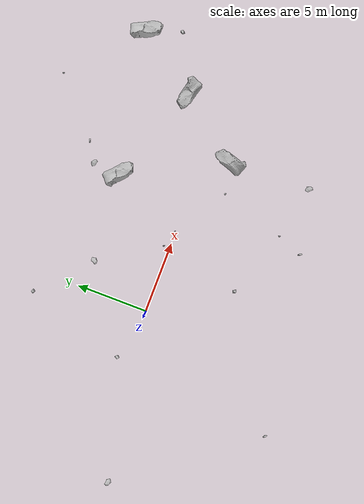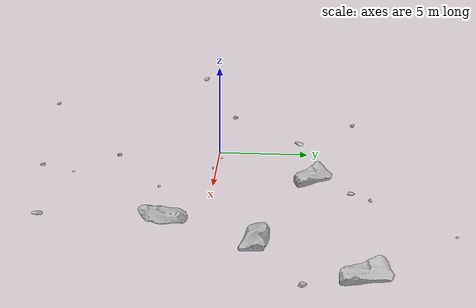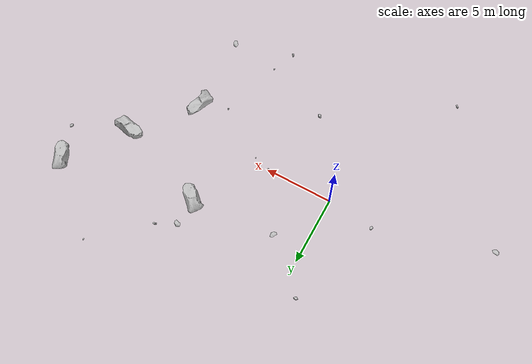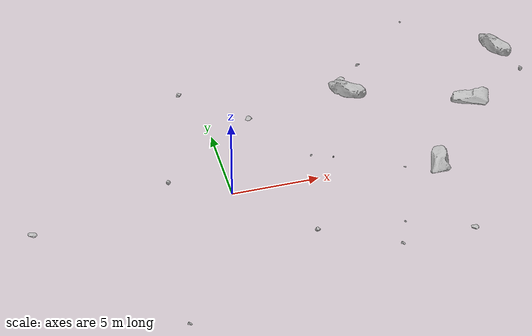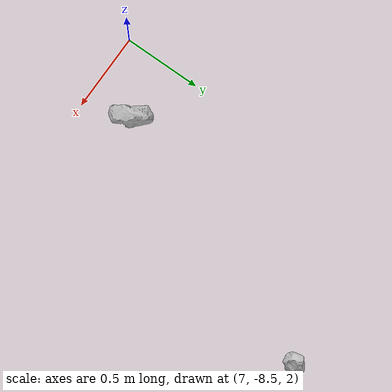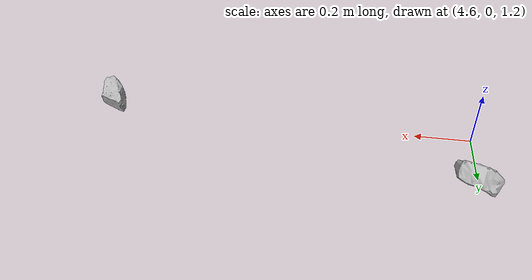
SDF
<sdf version="1.7">
 <world name="marsyard">
  <gravity>0 0 -9.81</gravity>
  <physics name="dart_physics" type="ignored">
   <max_step_size>0.003</max_step_size>
   <real_time_update_rate>333</real_time_update_rate>
   <real_time_factor>1.0</real_time_factor>
  </physics>
  <plugin filename="ignition-gazebo-physics-system" name="ignition::gazebo::systems::Physics"/>
  <plugin filename="ignition-gazebo-user-commands-system" name="ignition::gazebo::systems::UserCommands"/>
  <plugin filename="ignition-gazebo-scene-broadcaster-system" name="ignition::gazebo::systems::SceneBroadcaster"/>
  <plugin filename="ignition-gazebo-contact-system" name="ignition::gazebo::systems::Contact"/>
  <scene>
   <ambient>0.95 0.95 0.95 1</ambient>
   <background>0.70 0.70 0.70 1</background>
   <shadows>false</shadows>
  </scene>
  <light type="directional" name="sun">
   <cast_shadows>false</cast_shadows>
   <pose>0 0 30 0 0 0</pose>
   <diffuse>1 1 1 1</diffuse>
   <specular>0.15 0.15 0.15 1</specular>
   <direction>-0.35 0.1 -0.93</direction>
  </light>
  <model name="Rock_1">
   <static>true</static>
   <pose>2.1064 4.4411 1.4206 0.0000 0.0000 0.7636</pose>
   <link name="link">
    <visual name="visual">
     <geometry><mesh><uri>package://rock_generator/rocks_ws/rock_8/meshes/rock_8.stl</uri></mesh></geometry>
    </visual>
    <collision name="collision">
     <geometry><mesh><uri>package://rock_generator/rocks_ws/rock_8/meshes/rock_8.stl</uri></mesh></geometry>
    </collision>
   </link>
  </model>
  <model name="Rock_2">
   <static>true</static>
   <pose>8.1412 4.9254 1.6390 0.0000 0.0000 2.5500</pose>
   <link name="link">
    <visual name="visual">
     <geometry><mesh><uri>package://rock_generator/rocks_ws/rock_4/meshes/rock_4.stl</uri></mesh></geometry>
    </visual>
   </link>
  </model>
  <model name="Rock_4">
   <static>true</static>
   <pose>-4.9092 -10.5111 1.2330 0.0000 0.0000 -0.8682</pose>
   <link name="link">
    <visual name="visual">
     <geometry><mesh><uri>package://rock_generator/rocks_ws/rock_6/meshes/rock_6.stl</uri></mesh></geometry>
    </visual>
    <collision name="collision">
     <geometry><mesh><uri>package://rock_generator/rocks_ws/rock_6/meshes/rock_6.stl</uri></mesh></geometry>
    </collision>
   </link>
  </model>
  <model name="Rock_5">
   <static>true</static>
   <pose>3.5167 -5.1293 0.9736 0.0000 0.0000 -2.0734</pose>
   <link name="link">
    <visual name="visual">
     <geometry><mesh><uri>package://rock_generator/rocks_ws/rock_1/meshes/rock_1.stl</uri></mesh></geometry>
    </visual>
    <collision name="collision">
     <geometry><mesh><uri>package://rock_generator/rocks_ws/rock_1/meshes/rock_1.stl</uri></mesh></geometry>
    </collision>
   </link>
  </model>
  <model name="Rock_6">
   <static>true</static>
   <pose>17.7425 6.6122 1.6341 0.0000 0.0000 2.1477</pose>
   <link name="link">
    <visual name="visual">
     <geometry><mesh><uri>package://rock_generator/rocks_ws/rock_4/meshes/rock_4.stl</uri></mesh></geometry>
    </visual>
   </link>
  </model>
  <model name="Rock_8">
   <static>true</static>
   <pose>-3.5037 0.7361 0.9656 0.0000 0.0000 0.0425</pose>
   <link name="link">
    <visual name="visual">
     <geometry><mesh><uri>package://rock_generator/rocks_ws/rock_1/meshes/rock_1.stl</uri></mesh></geometry>
    </visual>
    <collision name="collision">
     <geometry><mesh><uri>package://rock_generator/rocks_ws/rock_1/meshes/rock_1.stl</uri></mesh></geometry>
    </collision>
   </link>
  </model>
  <model name="Rock_9">
   <static>true</static>
   <pose>9.5369 7.6116 1.3430 0.0000 0.0000 0.1373</pose>
   <link name="link">
    <visual name="visual">
     <geometry><mesh><uri>package://rock_generator/rocks_ws/rock_6/meshes/rock_6.stl</uri></mesh></geometry>
    </visual>
    <collision name="collision">
     <geometry><mesh><uri>package://rock_generator/rocks_ws/rock_6/meshes/rock_6.stl</uri></mesh></geometry>
    </collision>
   </link>
  </model>
  <model name="Rock_10">
   <static>true</static>
   <pose>13.1688 10.8782 1.3449 0.0000 0.0000 1.9904</pose>
   <link name="link">
    <visual name="visual">
     <geometry><mesh><uri>package://rock_generator/rocks_ws/rock_5/meshes/rock_5.stl</uri></mesh></geometry>
    </visual>
    <collision name="collision">
     <geometry><mesh><uri>package://rock_generator/rocks_ws/rock_5/meshes/rock_5.stl</uri></mesh></geometry>
    </collision>
   </link>
  </model>
  <model name="Rock_11">
   <static>true</static>
   <pose>14.7358 2.5172 1.5235 0.0000 0.0000 -0.0635</pose>
   <link name="link">
    <visual name="visual">
     <geometry><mesh><uri>package://rock_generator/rocks_ws/rock_4/meshes/rock_4.stl</uri></mesh></geometry>
    </visual>
   </link>
  </model>
  <model name="Rock_12">
   <static>true</static>
   <pose>4.6779 0.4260 1.4407 0.0000 0.0000 -0.3562</pose>
   <link name="link">
    <visual name="visual">
     <geometry><mesh><uri>package://rock_generator/rocks_ws/rock_5/meshes/rock_5.stl</uri></mesh></geometry>
    </visual>
   </link>
  </model>
  <model name="Rock_13">
   <static>true</static>
   <pose>7.3553 -8.2359 1.8755 0.0000 0.0000 -1.1157</pose>
   <link name="link">
    <visual name="visual">
     <geometry><mesh><uri>package://rock_generator/rocks_ws/rock_6/meshes/rock_6.stl</uri></mesh></geometry>
    </visual>
   </link>
  </model>
  <model name="Rock_14">
   <static>true</static>
   <pose>18.4419 4.3397 1.6996 0.0000 0.0000 -0.0898</pose>
   <link name="link">
    <visual name="visual">
     <geometry><mesh><uri>package://rock_generator/rocks_ws/rock_1/meshes/rock_1.stl</uri></mesh></geometry>
    </visual>
    <collision name="collision">
     <geometry><mesh><uri>package://rock_generator/rocks_ws/rock_1/meshes/rock_1.stl</uri></mesh></geometry>
    </collision>
   </link>
  </model>
  <model name="Rock_16">
   <static>true</static>
   <pose>8.0194 -6.5495 1.8041 0.0000 0.0000 1.9377</pose>
   <link name="link">
    <visual name="visual">
     <geometry><mesh><uri>package://rock_generator/rocks_ws/rock_5/meshes/rock_5.stl</uri></mesh></geometry>
    </visual>
   </link>
  </model>
  <model name="Rock_18">
   <static>true</static>
   <pose>11.7506 -7.3569 1.2337 0.0000 0.0000 1.9914</pose>
   <link name="link">
    <visual name="visual">
     <geometry><mesh><uri>package://rock_generator/rocks_ws/rock_8/meshes/rock_8.stl</uri></mesh></geometry>
    </visual>
    <collision name="collision">
     <geometry><mesh><uri>package://rock_generator/rocks_ws/rock_8/meshes/rock_8.stl</uri></mesh></geometry>
    </collision>
   </link>
  </model>
  <model name="Rock_19">
   <static>true</static>
   <pose>-11.5816 -1.7186 1.2109 0.0000 0.0000 -0.4399</pose>
   <link name="link">
    <visual name="visual">
     <geometry><mesh><uri>package://rock_generator/rocks_ws/rock_8/meshes/rock_8.stl</uri></mesh></geometry>
    </visual>
    <collision name="collision">
     <geometry><mesh><uri>package://rock_generator/rocks_ws/rock_8/meshes/rock_8.stl</uri></mesh></geometry>
    </collision>
   </link>
  </model>
  <model name="Rock_20">
   <static>true</static>
   <pose>-1.2767 7.5827 1.3245 0.0000 0.0000 -1.3633</pose>
   <link name="link">
    <visual name="visual">
     <geometry><mesh><uri>package://rock_generator/rocks_ws/rock_1/meshes/rock_1.stl</uri></mesh></geometry>
    </visual>
    <collision name="collision">
     <geometry><mesh><uri>package://rock_generator/rocks_ws/rock_1/meshes/rock_1.stl</uri></mesh></geometry>
    </collision>
   </link>
  </model>
  <model name="Rock_21">
   <static>true</static>
   <pose>9.3703 -2.1715 1.7108 0.0000 0.0000 2.6960</pose>
   <link name="link">
    <visual name="visual">
     <geometry><mesh><uri>package://rock_generator/rocks_ws/rock_5/meshes/rock_5.stl</uri></mesh></geometry>
    </visual>
    <collision name="collision">
     <geometry><mesh><uri>package://rock_generator/rocks_ws/rock_5/meshes/rock_5.stl</uri></mesh></geometry>
    </collision>
   </link>
  </model>
  <model name="Rock_22">
   <static>true</static>
   <pose>5.8744 0.0781 1.3433 0.0000 0.0000 -1.3788</pose>
   <link name="link">
    <visual name="visual">
     <geometry><mesh><uri>package://rock_generator/rocks_ws/rock_9/meshes/rock_9.stl</uri></mesh></geometry>
    </visual>
    <collision name="collision">
     <geometry><mesh><uri>package://rock_generator/rocks_ws/rock_9/meshes/rock_9.stl</uri></mesh></geometry>
    </collision>
   </link>
  </model>
  <model name="Rock_23">
   <static>true</static>
   <pose>8.2627 6.8493 1.1339 0.0000 0.0000 2.5533</pose>
   <link name="link">
    <visual name="visual">
     <geometry><mesh><uri>package://rock_generator/rocks_ws/rock_8/meshes/rock_8.stl</uri></mesh></geometry>
    </visual>
    <collision name="collision">
     <geometry><mesh><uri>package://rock_generator/rocks_ws/rock_8/meshes/rock_8.stl</uri></mesh></geometry>
    </collision>
   </link>
  </model>
  <model name="Rock_24">
   <static>true</static>
   <pose>11.6047 -1.6905 0.9938 0.0000 0.0000 -1.7081</pose>
   <link name="link">
    <visual name="visual">
     <geometry><mesh><uri>package://rock_generator/rocks_ws/rock_4/meshes/rock_4.stl</uri></mesh></geometry>
    </visual>
   </link>
  </model>
 </world>
</sdf>
